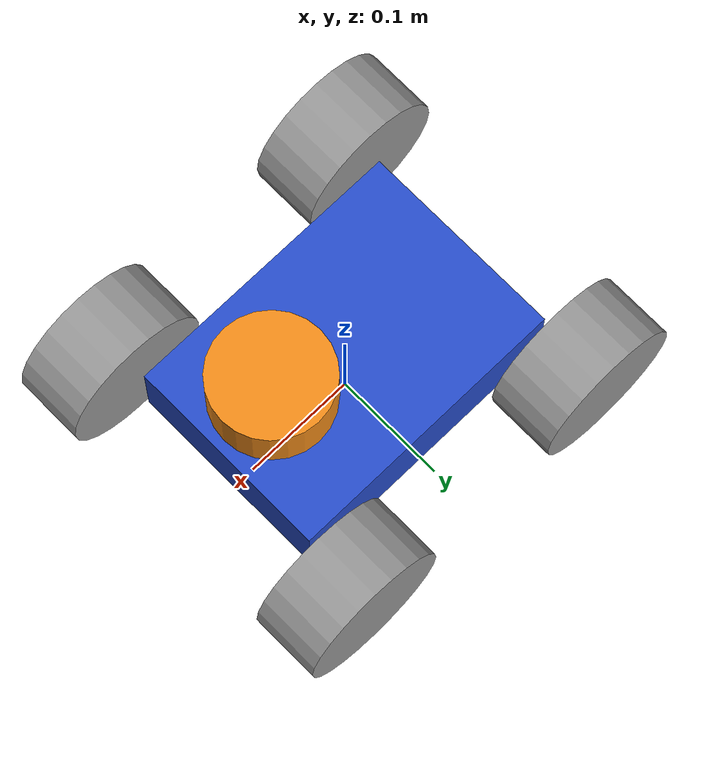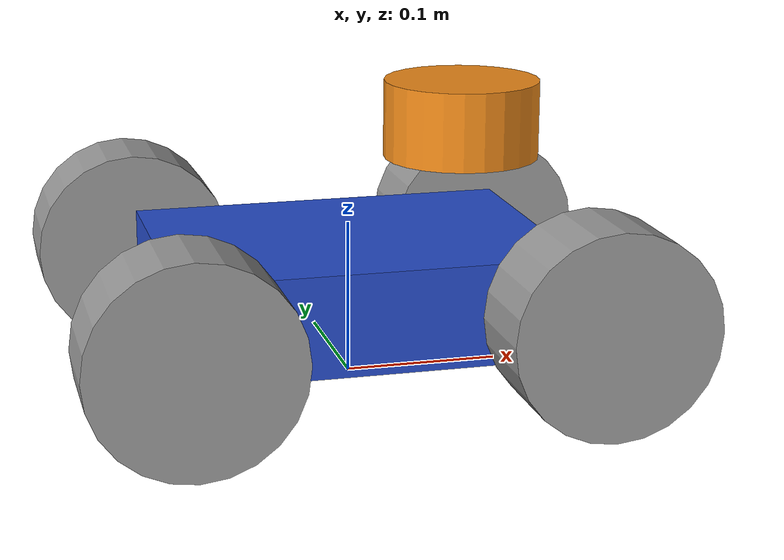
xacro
<?xml version="1.0"?>
<robot name="my_robot" xmlns:xacro="http://www.ros.org/wiki/xacro">

    <xacro:include filename="common_properties.xacro" />
    <xacro:include filename="mobile_base.xacro" />
    <xacro:include filename="lidar.xacro" />
    <xacro:include filename="my_robot.gazebo.xacro" />

</robot>

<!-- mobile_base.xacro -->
<robot xmlns:xacro="http://www.ros.org/wiki/xacro">

    <xacro:property name="base_length" value="0.25" />
    <xacro:property name="base_width" value="0.18" />
    <xacro:property name="base_height" value="0.065" />
    <xacro:property name="wheel_radius" value="0.065" />
    <xacro:property name="wheel_length" value="0.06" />
    <xacro:property name="base_mass" value="5.0" />
    <xacro:property name="wheel_mass" value="1.0" />
    <xacro:property name="base_z_footprint" value="0.03" />

    <link name="base_footprint" />

    <link name="base_link">
        <visual>
            <geometry>
                <box size="${base_length} ${base_width} ${base_height}" />
            </geometry>
            <origin xyz="0 0 0.03" rpy="0 0 0" />
            <material name="blue" />
        </visual>
        <collision>
            <geometry>
                <box size="${base_length} ${base_width} ${base_height}" />
            </geometry>
            <origin xyz="0 0 0.03" rpy="0 0 0" />
        </collision>
        <xacro:box_inertia m="${base_mass}" x="${base_length}" y="${base_width}" z="${base_height}"
                           o_xyz="0 0 0.03" o_rpy="0 0 0" />
    </link>

    <xacro:macro name="wheel_link" params="prefix">
        <link name="${prefix}_wheel_link">
            <visual>
                <geometry>
                    <cylinder radius="${wheel_radius}" length="${wheel_length}" />
                </geometry>
                <origin xyz="0 0 0" rpy="${pi / 2.0} 0 0" />
                <material name="grey" />
            </visual>
            <collision>
                <geometry>
                    <sphere radius="${wheel_radius}" />
                </geometry>
                <origin xyz="0 0 0" rpy="0 0 0" />
            </collision>
            <xacro:cylinder_inertia m="${wheel_mass}" r="${wheel_radius}" l="${wheel_length}"
                                    o_xyz="0 0 0" o_rpy="${pi / 2.0} 0 0" />
        </link>
    </xacro:macro>

    <xacro:wheel_link prefix="right_back" />
    <xacro:wheel_link prefix="left_back" />
    <xacro:wheel_link prefix="right_front" />
    <xacro:wheel_link prefix="left_front" />

    <joint name="base_joint" type="fixed">
        <parent link="base_footprint" />
        <child link="base_link" />
        <origin xyz="0 0 ${base_z_footprint}" rpy="0 0 0"/>
    </joint>

    <joint name="base_right_back_wheel_joint" type="continuous">
        <parent link="base_link" />
        <child link="right_back_wheel_link" />
        <origin xyz="${-base_length / 2.0} ${-(base_width + wheel_length) / 2.0 - 0.01} ${wheel_radius / 2.0}" rpy="0 0 0" />
        <axis xyz="0 1 0" />
        <limit effort="10.0" velocity="10.0"/>
        <dynamics damping="0.1" friction="0.1"/>
    </joint>

    <joint name="base_left_back_wheel_joint" type="continuous">
        <parent link="base_link" />
        <child link="left_back_wheel_link" />
        <origin xyz="${-base_length / 2.0} ${(base_width + wheel_length) / 2.0 + 0.01} ${wheel_radius / 2.0}" rpy="0 0 0" />
        <axis xyz="0 1 0" />
        <limit effort="10.0" velocity="10.0"/>
        <dynamics damping="0.1" friction="0.1"/>
    </joint>

    <joint name="base_right_front_wheel_joint" type="continuous">
        <parent link="base_link" />
        <child link="right_front_wheel_link" />
        <origin xyz="${base_length / 2.0} ${-(base_width + wheel_length) / 2.0 - 0.01} ${wheel_radius / 2.0}" rpy="0 0 0" />
        <axis xyz="0 1 0" />
        <limit effort="10.0" velocity="10.0"/>
        <dynamics damping="0.1" friction="0.1"/>
    </joint>

    <joint name="base_left_front_wheel_joint" type="continuous">
        <parent link="base_link" />
        <child link="left_front_wheel_link" />
        <origin xyz="${base_length / 2.0} ${(base_width + wheel_length) / 2.0 + 0.01} ${wheel_radius / 2.0}" rpy="0 0 0" />
        <axis xyz="0 1 0" />
        <limit effort="10.0" velocity="10.0"/>
        <dynamics damping="0.1" friction="0.1"/>
    </joint>

</robot>

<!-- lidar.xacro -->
<robot xmlns:xacro="http://www.ros.org/wiki/xacro">

    <xacro:property name="lidar_radius" value="0.05" />
    <xacro:property name="lidar_length" value="0.05" />

    <link name="lidar_link">
        <visual>
            <geometry>
                <cylinder radius="${lidar_radius}" length="${lidar_length}" />
            </geometry>
            <material name="orange" />
        </visual>
        <collision>
            <geometry>
                <cylinder radius="${lidar_radius}" length="${lidar_length}" />
            </geometry>
        </collision>
        <xacro:cylinder_inertia m="0.1" r="${lidar_radius}" l="${lidar_length}"
                                o_xyz="0 0 0" o_rpy="0 0 0" />
    </link>

    <joint name="lidar_joint" type="fixed">
        <parent link="base_link" />
        <child link="lidar_link" />
        <origin xyz="0.075 0 0.135" rpy="0 0 0" />
    </joint>

</robot>
